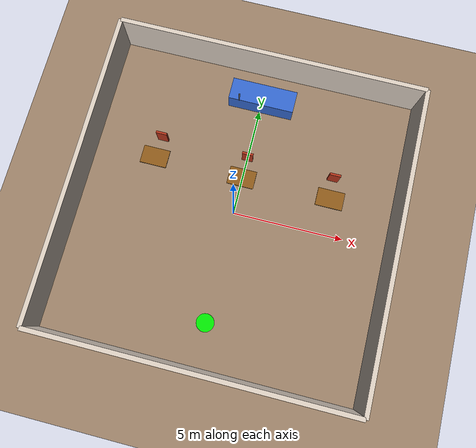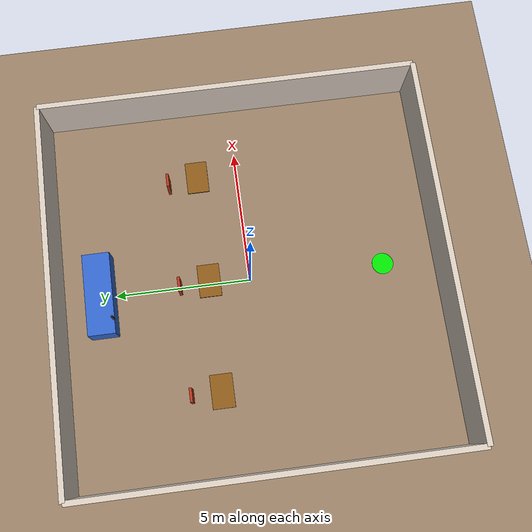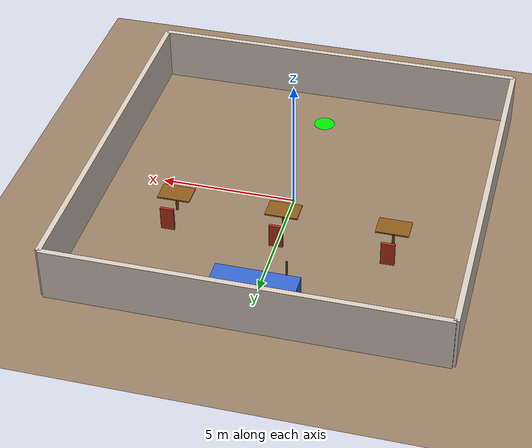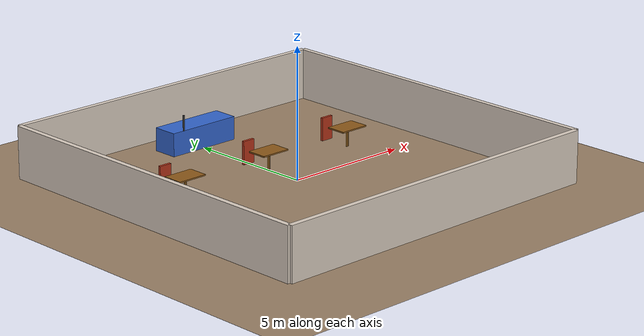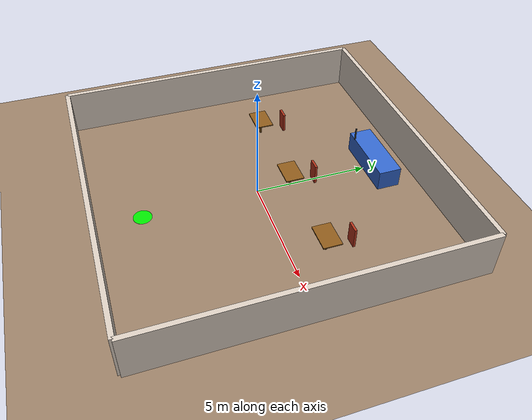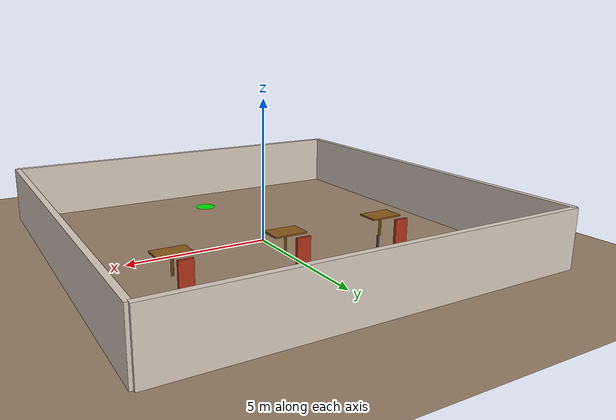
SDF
<?xml version="1.0" ?>
<sdf version="1.8">
  <world name="cafe_world">

    <!-- Physics -->
    <physics name="1ms" type="ignored">
      <max_step_size>0.001</max_step_size>
      <real_time_factor>1.0</real_time_factor>
    </physics>

    <!-- Core Plugins -->
    <plugin filename="gz-sim-physics-system"        name="gz::sim::systems::Physics"/>
    <plugin filename="gz-sim-user-commands-system"  name="gz::sim::systems::UserCommands"/>
    <plugin filename="gz-sim-scene-broadcaster-system" name="gz::sim::systems::SceneBroadcaster"/>
    <plugin filename="gz-sim-sensors-system"        name="gz::sim::systems::Sensors">
      <render_engine>ogre2</render_engine>
    </plugin>

    <!-- Lighting -->
    <light type="directional" name="sun">
      <cast_shadows>true</cast_shadows>
      <pose>0 0 10 0 0 0</pose>
      <diffuse>0.9 0.9 0.9 1</diffuse>
      <specular>0.3 0.3 0.3 1</specular>
      <direction>-0.5 0.1 -0.9</direction>
    </light>

    <!-- Ground Plane -->
    <model name="ground_plane">
      <static>true</static>
      <link name="link">
        <collision name="collision">
          <geometry>
            <plane><normal>0 0 1</normal><size>50 50</size></plane>
          </geometry>
        </collision>
        <visual name="visual">
          <geometry>
            <plane><normal>0 0 1</normal><size>50 50</size></plane>
          </geometry>
          <material>
            <ambient>0.6 0.5 0.4 1</ambient>
            <diffuse>0.6 0.5 0.4 1</diffuse>
          </material>
        </visual>
      </link>
    </model>

    <!-- ===== CAFE WALLS ===== -->
    <!-- North Wall -->
    <model name="wall_north">
      <static>true</static>
      <pose>0 7 1 0 0 0</pose>
      <link name="link">
        <collision name="col"><geometry><box><size>14 0.2 2</size></box></geometry></collision>
        <visual name="vis">
          <geometry><box><size>14 0.2 2</size></box></geometry>
          <material><ambient>0.85 0.8 0.75 1</ambient><diffuse>0.85 0.8 0.75 1</diffuse></material>
        </visual>
      </link>
    </model>

    <!-- South Wall -->
    <model name="wall_south">
      <static>true</static>
      <pose>0 -7 1 0 0 0</pose>
      <link name="link">
        <collision name="col"><geometry><box><size>14 0.2 2</size></box></geometry></collision>
        <visual name="vis">
          <geometry><box><size>14 0.2 2</size></box></geometry>
          <material><ambient>0.85 0.8 0.75 1</ambient><diffuse>0.85 0.8 0.75 1</diffuse></material>
        </visual>
      </link>
    </model>

    <!-- East Wall -->
    <model name="wall_east">
      <static>true</static>
      <pose>7 0 1 0 0 0</pose>
      <link name="link">
        <collision name="col"><geometry><box><size>0.2 14 2</size></box></geometry></collision>
        <visual name="vis">
          <geometry><box><size>0.2 14 2</size></box></geometry>
          <material><ambient>0.85 0.8 0.75 1</ambient><diffuse>0.85 0.8 0.75 1</diffuse></material>
        </visual>
      </link>
    </model>

    <!-- West Wall -->
    <model name="wall_west">
      <static>true</static>
      <pose>-7 0 1 0 0 0</pose>
      <link name="link">
        <collision name="col"><geometry><box><size>0.2 14 2</size></box></geometry></collision>
        <visual name="vis">
          <geometry><box><size>0.2 14 2</size></box></geometry>
          <material><ambient>0.85 0.8 0.75 1</ambient><diffuse>0.85 0.8 0.75 1</diffuse></material>
        </visual>
      </link>
    </model>

    <!-- ===== KITCHEN COUNTER ===== -->
    <model name="kitchen_counter">
      <static>true</static>
      <pose>0.0 5.5 0.45 0 0 0</pose>
      <link name="link">
        <collision name="col"><geometry><box><size>3.0 1.0 0.9</size></box></geometry></collision>
        <visual name="vis">
          <geometry><box><size>3.0 1.0 0.9</size></box></geometry>
          <material><ambient>0.2 0.4 0.8 1</ambient><diffuse>0.2 0.4 0.8 1</diffuse></material>
        </visual>
      </link>
    </model>

    <!-- Kitchen label post -->
    <model name="kitchen_sign_post">
      <static>true</static>
      <pose>-1.0 5.0 1.2 0 0 0</pose>
      <link name="link">
        <visual name="vis">
          <geometry><box><size>0.05 0.05 0.6</size></box></geometry>
          <material><ambient>0.3 0.3 0.3 1</ambient></material>
        </visual>
      </link>
    </model>

    <!-- ===== TABLE 1 (Left) ===== -->
    <!-- Table top -->
    <model name="table1_top">
      <static>true</static>
      <pose>-4.0 1.5 0.75 0 0 0</pose>
      <link name="link">
        <collision name="col"><geometry><box><size>1.2 0.8 0.05</size></box></geometry></collision>
        <visual name="vis">
          <geometry><box><size>1.2 0.8 0.05</size></box></geometry>
          <material><ambient>0.55 0.35 0.1 1</ambient><diffuse>0.55 0.35 0.1 1</diffuse></material>
        </visual>
      </link>
    </model>
    <!-- Table leg -->
    <model name="table1_leg">
      <static>true</static>
      <pose>-4.0 1.5 0.375 0 0 0</pose>
      <link name="link">
        <collision name="col"><geometry><cylinder><radius>0.05</radius><length>0.75</length></cylinder></geometry></collision>
        <visual name="vis">
          <geometry><cylinder><radius>0.05</radius><length>0.75</length></cylinder></geometry>
          <material><ambient>0.4 0.25 0.05 1</ambient></material>
        </visual>
      </link>
    </model>
    <!-- Chair at table1 -->
    <model name="chair1">
      <static>true</static>
      <pose>-4.0 2.6 0.45 0 0 0</pose>
      <link name="link">
        <collision name="col"><geometry><box><size>0.5 0.1 0.9</size></box></geometry></collision>
        <visual name="vis">
          <geometry><box><size>0.5 0.1 0.9</size></box></geometry>
          <material><ambient>0.7 0.2 0.1 1</ambient><diffuse>0.7 0.2 0.1 1</diffuse></material>
        </visual>
      </link>
    </model>

    <!-- ===== TABLE 2 (Center) ===== -->
    <model name="table2_top">
      <static>true</static>
      <pose>0.0 1.5 0.75 0 0 0</pose>
      <link name="link">
        <collision name="col"><geometry><box><size>1.2 0.8 0.05</size></box></geometry></collision>
        <visual name="vis">
          <geometry><box><size>1.2 0.8 0.05</size></box></geometry>
          <material><ambient>0.55 0.35 0.1 1</ambient><diffuse>0.55 0.35 0.1 1</diffuse></material>
        </visual>
      </link>
    </model>
    <model name="table2_leg">
      <static>true</static>
      <pose>0.0 1.5 0.375 0 0 0</pose>
      <link name="link">
        <collision name="col"><geometry><cylinder><radius>0.05</radius><length>0.75</length></cylinder></geometry></collision>
        <visual name="vis">
          <geometry><cylinder><radius>0.05</radius><length>0.75</length></cylinder></geometry>
          <material><ambient>0.4 0.25 0.05 1</ambient></material>
        </visual>
      </link>
    </model>
    <model name="chair2">
      <static>true</static>
      <pose>0.0 2.6 0.45 0 0 0</pose>
      <link name="link">
        <collision name="col"><geometry><box><size>0.5 0.1 0.9</size></box></geometry></collision>
        <visual name="vis">
          <geometry><box><size>0.5 0.1 0.9</size></box></geometry>
          <material><ambient>0.7 0.2 0.1 1</ambient><diffuse>0.7 0.2 0.1 1</diffuse></material>
        </visual>
      </link>
    </model>

    <!-- ===== TABLE 3 (Right) ===== -->
    <model name="table3_top">
      <static>true</static>
      <pose>4.0 1.5 0.75 0 0 0</pose>
      <link name="link">
        <collision name="col"><geometry><box><size>1.2 0.8 0.05</size></box></geometry></collision>
        <visual name="vis">
          <geometry><box><size>1.2 0.8 0.05</size></box></geometry>
          <material><ambient>0.55 0.35 0.1 1</ambient><diffuse>0.55 0.35 0.1 1</diffuse></material>
        </visual>
      </link>
    </model>
    <model name="table3_leg">
      <static>true</static>
      <pose>4.0 1.5 0.375 0 0 0</pose>
      <link name="link">
        <collision name="col"><geometry><cylinder><radius>0.05</radius><length>0.75</length></cylinder></geometry></collision>
        <visual name="vis">
          <geometry><cylinder><radius>0.05</radius><length>0.75</length></cylinder></geometry>
          <material><ambient>0.4 0.25 0.05 1</ambient></material>
        </visual>
      </link>
    </model>
    <model name="chair3">
      <static>true</static>
      <pose>4.0 2.6 0.45 0 0 0</pose>
      <link name="link">
        <collision name="col"><geometry><box><size>0.5 0.1 0.9</size></box></geometry></collision>
        <visual name="vis">
          <geometry><box><size>0.5 0.1 0.9</size></box></geometry>
          <material><ambient>0.7 0.2 0.1 1</ambient><diffuse>0.7 0.2 0.1 1</diffuse></material>
        </visual>
      </link>
    </model>

    <!-- ===== HOME POSITION MARKER (flush with floor, no collision) ===== -->
    <model name="home_marker">
      <static>true</static>
      <pose>0.0 -5.0 0.001 0 0 0</pose>
      <link name="link">
        <visual name="vis">
          <geometry><cylinder><radius>0.4</radius><length>0.002</length></cylinder></geometry>
          <material><ambient>0.0 0.9 0.0 1</ambient><diffuse>0.0 0.9 0.0 1</diffuse></material>
        </visual>
      </link>
    </model>

  </world>
</sdf>
